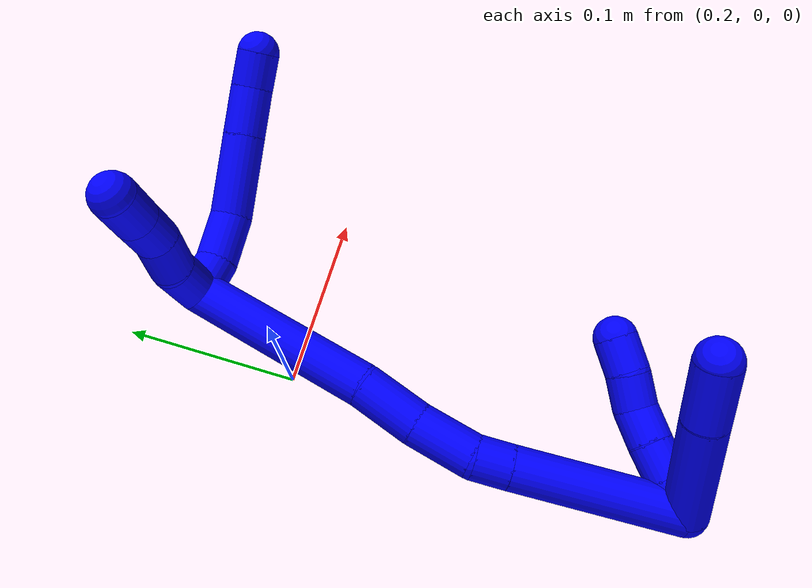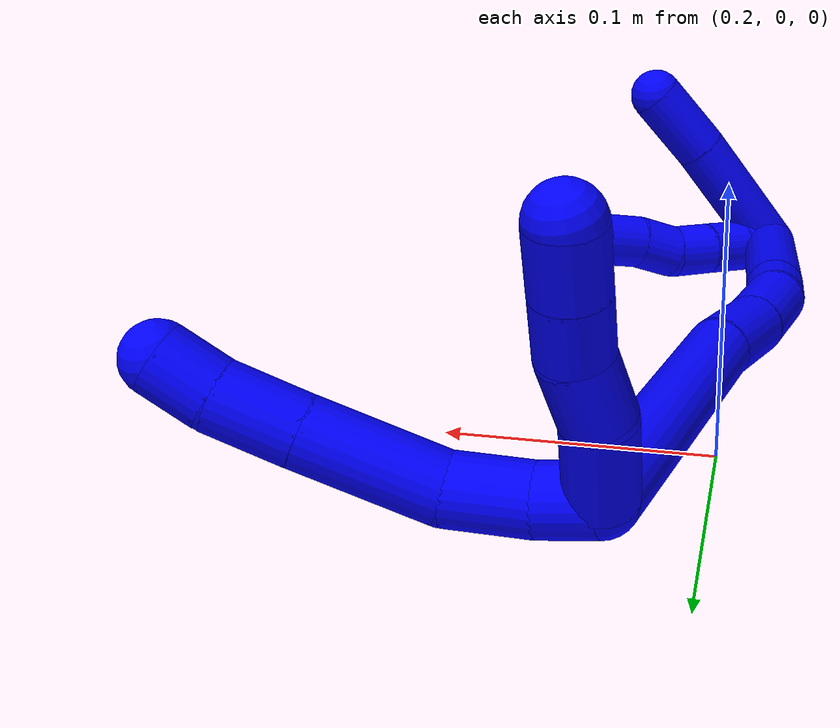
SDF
<sdf version="1.7">
 <world name="default">
  <model name="1">
   <static>0</static>
   <link name="1">
    <collision name="collision-cylinder-e_1_2_8">
     <pose>-0.010496 -0.000356 0.000443 0.677442 -1.51674 -0.644255</pose>
     <geometry><cylinder><radius>0.0125</radius><length>0.021023</length></cylinder></geometry>
     <surface>
      <friction><ode><mu>1.16</mu><mu2>1.16</mu2><slip1>0</slip1><slip2>0</slip2></ode></friction>
      <contact><ode><kp>1e+06</kp><kd>1</kd><max_vel>0</max_vel><min_depth>0.001</min_depth></ode></contact>
     </surface>
    </collision>
    <visual name="visual-cylinder-e_1_2_8">
     <pose>-0.010496 -0.000356 0.000443 0.677442 -1.51674 -0.644255</pose>
     <geometry><cylinder><radius>0.0125</radius><length>0.021023</length></cylinder></geometry>
     <material><ambient>0 0 1 1</ambient></material>
    </visual>
    <collision name="collision-cylinder-e_2_8_9">
     <pose>-0.035555 -0.000257 -0.002186 -2.99445 -1.36076 2.95994</pose>
     <geometry><cylinder><radius>0.0125</radius><length>0.02978</length></cylinder></geometry>
     <surface>
      <friction><ode><mu>1.16</mu><mu2>1.16</mu2><slip1>0</slip1><slip2>0</slip2></ode></friction>
      <contact><ode><kp>1e+06</kp><kd>1</kd><max_vel>0</max_vel><min_depth>0.001</min_depth></ode></contact>
     </surface>
    </collision>
    <visual name="visual-cylinder-e_2_8_9">
     <pose>-0.035555 -0.000257 -0.002186 -2.99445 -1.36076 2.95994</pose>
     <geometry><cylinder><radius>0.0125</radius><length>0.02978</length></cylinder></geometry>
     <material><ambient>0 0 1 1</ambient></material>
    </visual>
    <collision name="collision-cylinder-e_3_9_10">
     <pose>-0.071076 -0.000217 -0.017698 3.10824 -1.03484 -3.08299</pose>
     <geometry><cylinder><radius>0.0125</radius><length>0.048752</length></cylinder></geometry>
     <surface>
      <friction><ode><mu>1.16</mu><mu2>1.16</mu2><slip1>0</slip1><slip2>0</slip2></ode></friction>
      <contact><ode><kp>1e+06</kp><kd>1</kd><max_vel>0</max_vel><min_depth>0.001</min_depth></ode></contact>
     </surface>
    </collision>
    <visual name="visual-cylinder-e_3_9_10">
     <pose>-0.071076 -0.000217 -0.017698 3.10824 -1.03484 -3.08299</pose>
     <geometry><cylinder><radius>0.0125</radius><length>0.048752</length></cylinder></geometry>
     <material><ambient>0 0 1 1</ambient></material>
    </visual>
    <collision name="collision-cylinder-e_4_10_11">
     <pose>-0.104464 -0.001133 -0.037786 3.0762 -1.01832 -3.02455</pose>
     <geometry><cylinder><radius>0.0125</radius><length>0.029205</length></cylinder></geometry>
     <surface>
      <friction><ode><mu>1.16</mu><mu2>1.16</mu2><slip1>0</slip1><slip2>0</slip2></ode></friction>
      <contact><ode><kp>1e+06</kp><kd>1</kd><max_vel>0</max_vel><min_depth>0.001</min_depth></ode></contact>
     </surface>
    </collision>
    <visual name="visual-cylinder-e_4_10_11">
     <pose>-0.104464 -0.001133 -0.037786 3.0762 -1.01832 -3.02455</pose>
     <geometry><cylinder><radius>0.0125</radius><length>0.029205</length></cylinder></geometry>
     <material><ambient>0 0 1 1</ambient></material>
    </visual>
    <collision name="collision-cylinder-e_5_11_6">
     <pose>-0.125039 -0.003188 -0.052068 2.9114 -0.874117 -2.65644</pose>
     <geometry><cylinder><radius>0.0125</radius><length>0.02124</length></cylinder></geometry>
     <surface>
      <friction><ode><mu>1.16</mu><mu2>1.16</mu2><slip1>0</slip1><slip2>0</slip2></ode></friction>
      <contact><ode><kp>1e+06</kp><kd>1</kd><max_vel>0</max_vel><min_depth>0.001</min_depth></ode></contact>
     </surface>
    </collision>
    <visual name="visual-cylinder-e_5_11_6">
     <pose>-0.125039 -0.003188 -0.052068 2.9114 -0.874117 -2.65644</pose>
     <geometry><cylinder><radius>0.0125</radius><length>0.02124</length></cylinder></geometry>
     <material><ambient>0 0 1 1</ambient></material>
    </visual>
    <collision name="collision-cylinder-e_1_2_12">
     <pose>0.002243 -0.001075 -0.015877 3.07397 0.140013 2.24266</pose>
     <geometry><cylinder><radius>0.0125</radius><length>0.032142</length></cylinder></geometry>
     <surface>
      <friction><ode><mu>1.16</mu><mu2>1.16</mu2><slip1>0</slip1><slip2>0</slip2></ode></friction>
      <contact><ode><kp>1e+06</kp><kd>1</kd><max_vel>0</max_vel><min_depth>0.001</min_depth></ode></contact>
     </surface>
    </collision>
    <visual name="visual-cylinder-e_1_2_12">
     <pose>0.002243 -0.001075 -0.015877 3.07397 0.140013 2.24266</pose>
     <geometry><cylinder><radius>0.0125</radius><length>0.032142</length></cylinder></geometry>
     <material><ambient>0 0 1 1</ambient></material>
    </visual>
    <collision name="collision-cylinder-e_2_12_13">
     <pose>0.002919 -0.002958 -0.043507 3.07305 -0.132235 -2.18598</pose>
     <geometry><cylinder><radius>0.0125</radius><length>0.023768</length></cylinder></geometry>
     <surface>
      <friction><ode><mu>1.16</mu><mu2>1.16</mu2><slip1>0</slip1><slip2>0</slip2></ode></friction>
      <contact><ode><kp>1e+06</kp><kd>1</kd><max_vel>0</max_vel><min_depth>0.001</min_depth></ode></contact>
     </surface>
    </collision>
    <visual name="visual-cylinder-e_2_12_13">
     <pose>0.002919 -0.002958 -0.043507 3.07305 -0.132235 -2.18598</pose>
     <geometry><cylinder><radius>0.0125</radius><length>0.023768</length></cylinder></geometry>
     <material><ambient>0 0 1 1</ambient></material>
    </visual>
    <collision name="collision-cylinder-e_3_13_14">
     <pose>0.002597 -0.004548 -0.065833 3.06765 0.116899 2.01422</pose>
     <geometry><cylinder><radius>0.0125</radius><length>0.02135</length></cylinder></geometry>
     <surface>
      <friction><ode><mu>1.16</mu><mu2>1.16</mu2><slip1>0</slip1><slip2>0</slip2></ode></friction>
      <contact><ode><kp>1e+06</kp><kd>1</kd><max_vel>0</max_vel><min_depth>0.001</min_depth></ode></contact>
     </surface>
    </collision>
    <visual name="visual-cylinder-e_3_13_14">
     <pose>0.002597 -0.004548 -0.065833 3.06765 0.116899 2.01422</pose>
     <geometry><cylinder><radius>0.0125</radius><length>0.02135</length></cylinder></geometry>
     <material><ambient>0 0 1 1</ambient></material>
    </visual>
    <collision name="collision-cylinder-e_4_14_5">
     <pose>0.005105 -0.006343 -0.08766 3.05188 0.111341 1.78549</pose>
     <geometry><cylinder><radius>0.0125</radius><length>0.02274</length></cylinder></geometry>
     <surface>
      <friction><ode><mu>1.16</mu><mu2>1.16</mu2><slip1>0</slip1><slip2>0</slip2></ode></friction>
      <contact><ode><kp>1e+06</kp><kd>1</kd><max_vel>0</max_vel><min_depth>0.001</min_depth></ode></contact>
     </surface>
    </collision>
    <visual name="visual-cylinder-e_4_14_5">
     <pose>0.005105 -0.006343 -0.08766 3.05188 0.111341 1.78549</pose>
     <geometry><cylinder><radius>0.0125</radius><length>0.02274</length></cylinder></geometry>
     <material><ambient>0 0 1 1</ambient></material>
    </visual>
    <collision name="collision-cylinder-e_1_2_15">
     <pose>0.011967 -0.053284 0.015263 1.29181 0.212641 0.160542</pose>
     <geometry><cylinder><radius>0.0125</radius><length>0.113408</length></cylinder></geometry>
     <surface>
      <friction><ode><mu>1.16</mu><mu2>1.16</mu2><slip1>0</slip1><slip2>0</slip2></ode></friction>
      <contact><ode><kp>1e+06</kp><kd>1</kd><max_vel>0</max_vel><min_depth>0.001</min_depth></ode></contact>
     </surface>
    </collision>
    <visual name="visual-cylinder-e_1_2_15">
     <pose>0.011967 -0.053284 0.015263 1.29181 0.212641 0.160542</pose>
     <geometry><cylinder><radius>0.0125</radius><length>0.113408</length></cylinder></geometry>
     <material><ambient>0 0 1 1</ambient></material>
    </visual>
    <collision name="collision-cylinder-e_2_15_16">
     <pose>0.028751 -0.122197 0.037553 1.14829 0.274062 0.177918</pose>
     <geometry><cylinder><radius>0.0125</radius><length>0.035599</length></cylinder></geometry>
     <surface>
      <friction><ode><mu>1.16</mu><mu2>1.16</mu2><slip1>0</slip1><slip2>0</slip2></ode></friction>
      <contact><ode><kp>1e+06</kp><kd>1</kd><max_vel>0</max_vel><min_depth>0.001</min_depth></ode></contact>
     </surface>
    </collision>
    <visual name="visual-cylinder-e_2_15_16">
     <pose>0.028751 -0.122197 0.037553 1.14829 0.274062 0.177918</pose>
     <geometry><cylinder><radius>0.0125</radius><length>0.035599</length></cylinder></geometry>
     <material><ambient>0 0 1 1</ambient></material>
    </visual>
    <collision name="collision-cylinder-e_3_16_17">
     <pose>0.036825 -0.153762 0.050362 1.22274 0.189738 0.133202</pose>
     <geometry><cylinder><radius>0.0125</radius><length>0.034526</length></cylinder></geometry>
     <surface>
      <friction><ode><mu>1.16</mu><mu2>1.16</mu2><slip1>0</slip1><slip2>0</slip2></ode></friction>
      <contact><ode><kp>1e+06</kp><kd>1</kd><max_vel>0</max_vel><min_depth>0.001</min_depth></ode></contact>
     </surface>
    </collision>
    <visual name="visual-cylinder-e_3_16_17">
     <pose>0.036825 -0.153762 0.050362 1.22274 0.189738 0.133202</pose>
     <geometry><cylinder><radius>0.0125</radius><length>0.034526</length></cylinder></geometry>
     <material><ambient>0 0 1 1</ambient></material>
    </visual>
    <collision name="collision-cylinder-e_4_17_18">
     <pose>0.039229 -0.178946 0.060183 1.15898 -0.084169 -0.055102</pose>
     <geometry><cylinder><radius>0.0125</radius><length>0.020253</length></cylinder></geometry>
     <surface>
      <friction><ode><mu>1.16</mu><mu2>1.16</mu2><slip1>0</slip1><slip2>0</slip2></ode></friction>
      <contact><ode><kp>1e+06</kp><kd>1</kd><max_vel>0</max_vel><min_depth>0.001</min_depth></ode></contact>
     </surface>
    </collision>
    <visual name="visual-cylinder-e_4_17_18">
     <pose>0.039229 -0.178946 0.060183 1.15898 -0.084169 -0.055102</pose>
     <geometry><cylinder><radius>0.0125</radius><length>0.020253</length></cylinder></geometry>
     <material><ambient>0 0 1 1</ambient></material>
    </visual>
    <collision name="collision-cylinder-e_5_18_1">
     <pose>0.033236 -0.232022 0.083373 1.15885 -0.107081 -0.070106</pose>
     <geometry><cylinder><radius>0.0125</radius><length>0.096213</length></cylinder></geometry>
     <surface>
      <friction><ode><mu>1.16</mu><mu2>1.16</mu2><slip1>0</slip1><slip2>0</slip2></ode></friction>
      <contact><ode><kp>1e+06</kp><kd>1</kd><max_vel>0</max_vel><min_depth>0.001</min_depth></ode></contact>
     </surface>
    </collision>
    <visual name="visual-cylinder-e_5_18_1">
     <pose>0.033236 -0.232022 0.083373 1.15885 -0.107081 -0.070106</pose>
     <geometry><cylinder><radius>0.0125</radius><length>0.096213</length></cylinder></geometry>
     <material><ambient>0 0 1 1</ambient></material>
    </visual>
    <collision name="collision-cylinder-e_1_1_19">
     <pose>0.013473 -0.278289 0.073809 3.05693 -0.46954 -2.79106</pose>
     <geometry><cylinder><radius>0.0125</radius><length>0.064631</length></cylinder></geometry>
     <surface>
      <friction><ode><mu>1.16</mu><mu2>1.16</mu2><slip1>0</slip1><slip2>0</slip2></ode></friction>
      <contact><ode><kp>1e+06</kp><kd>1</kd><max_vel>0</max_vel><min_depth>0.001</min_depth></ode></contact>
     </surface>
    </collision>
    <visual name="visual-cylinder-e_1_1_19">
     <pose>0.013473 -0.278289 0.073809 3.05693 -0.46954 -2.79106</pose>
     <geometry><cylinder><radius>0.0125</radius><length>0.064631</length></cylinder></geometry>
     <material><ambient>0 0 1 1</ambient></material>
    </visual>
    <collision name="collision-cylinder-e_2_19_4">
     <pose>-0.010208 -0.282184 0.029977 3.04542 -0.537818 -2.79585</pose>
     <geometry><cylinder><radius>0.0125</radius><length>0.035369</length></cylinder></geometry>
     <surface>
      <friction><ode><mu>1.16</mu><mu2>1.16</mu2><slip1>0</slip1><slip2>0</slip2></ode></friction>
      <contact><ode><kp>1e+06</kp><kd>1</kd><max_vel>0</max_vel><min_depth>0.001</min_depth></ode></contact>
     </surface>
    </collision>
    <visual name="visual-cylinder-e_2_19_4">
     <pose>-0.010208 -0.282184 0.029977 3.04542 -0.537818 -2.79585</pose>
     <geometry><cylinder><radius>0.0125</radius><length>0.035369</length></cylinder></geometry>
     <material><ambient>0 0 1 1</ambient></material>
    </visual>
    <collision name="collision-cylinder-e_1_1_20">
     <pose>0.020882 -0.270056 0.098734 -2.15001 -0.805722 1.33471</pose>
     <geometry><cylinder><radius>0.0125</radius><length>0.02</length></cylinder></geometry>
     <surface>
      <friction><ode><mu>1.16</mu><mu2>1.16</mu2><slip1>0</slip1><slip2>0</slip2></ode></friction>
      <contact><ode><kp>1e+06</kp><kd>1</kd><max_vel>0</max_vel><min_depth>0.001</min_depth></ode></contact>
     </surface>
    </collision>
    <visual name="visual-cylinder-e_1_1_20">
     <pose>0.020882 -0.270056 0.098734 -2.15001 -0.805722 1.33471</pose>
     <geometry><cylinder><radius>0.0125</radius><length>0.02</length></cylinder></geometry>
     <material><ambient>0 0 1 1</ambient></material>
    </visual>
    <collision name="collision-cylinder-e_2_20_21">
     <pose>0.006445 -0.258484 0.091139 -2.15312 -0.807175 1.34029</pose>
     <geometry><cylinder><radius>0.0125</radius><length>0.02</length></cylinder></geometry>
     <surface>
      <friction><ode><mu>1.16</mu><mu2>1.16</mu2><slip1>0</slip1><slip2>0</slip2></ode></friction>
      <contact><ode><kp>1e+06</kp><kd>1</kd><max_vel>0</max_vel><min_depth>0.001</min_depth></ode></contact>
     </surface>
    </collision>
    <visual name="visual-cylinder-e_2_20_21">
     <pose>0.006445 -0.258484 0.091139 -2.15312 -0.807175 1.34029</pose>
     <geometry><cylinder><radius>0.0125</radius><length>0.02</length></cylinder></geometry>
     <material><ambient>0 0 1 1</ambient></material>
    </visual>
    <collision name="collision-cylinder-e_3_21_22">
     <pose>-0.008497 -0.24733 0.083945 -2.13339 -0.881738 1.41518</pose>
     <geometry><cylinder><radius>0.0125</radius><length>0.02</length></cylinder></geometry>
     <surface>
      <friction><ode><mu>1.16</mu><mu2>1.16</mu2><slip1>0</slip1><slip2>0</slip2></ode></friction>
      <contact><ode><kp>1e+06</kp><kd>1</kd><max_vel>0</max_vel><min_depth>0.001</min_depth></ode></contact>
     </surface>
    </collision>
    <visual name="visual-cylinder-e_3_21_22">
     <pose>-0.008497 -0.24733 0.083945 -2.13339 -0.881738 1.41518</pose>
     <geometry><cylinder><radius>0.0125</radius><length>0.02</length></cylinder></geometry>
     <material><ambient>0 0 1 1</ambient></material>
    </visual>
    <collision name="collision-cylinder-e_4_22_23">
     <pose>-0.023627 -0.238711 0.074674 -2.6378 -0.834788 2.08989</pose>
     <geometry><cylinder><radius>0.0125</radius><length>0.02</length></cylinder></geometry>
     <surface>
      <friction><ode><mu>1.16</mu><mu2>1.16</mu2><slip1>0</slip1><slip2>0</slip2></ode></friction>
      <contact><ode><kp>1e+06</kp><kd>1</kd><max_vel>0</max_vel><min_depth>0.001</min_depth></ode></contact>
     </surface>
    </collision>
    <visual name="visual-cylinder-e_4_22_23">
     <pose>-0.023627 -0.238711 0.074674 -2.6378 -0.834788 2.08989</pose>
     <geometry><cylinder><radius>0.0125</radius><length>0.02</length></cylinder></geometry>
     <material><ambient>0 0 1 1</ambient></material>
    </visual>
    <collision name="collision-cylinder-e_5_23_3">
     <pose>-0.038599 -0.23083 0.064179 -2.35358 -0.857272 1.66521</pose>
     <geometry><cylinder><radius>0.0125</radius><length>0.02</length></cylinder></geometry>
     <surface>
      <friction><ode><mu>1.16</mu><mu2>1.16</mu2><slip1>0</slip1><slip2>0</slip2></ode></friction>
      <contact><ode><kp>1e+06</kp><kd>1</kd><max_vel>0</max_vel><min_depth>0.001</min_depth></ode></contact>
     </surface>
    </collision>
    <visual name="visual-cylinder-e_5_23_3">
     <pose>-0.038599 -0.23083 0.064179 -2.35358 -0.857272 1.66521</pose>
     <geometry><cylinder><radius>0.0125</radius><length>0.02</length></cylinder></geometry>
     <material><ambient>0 0 1 1</ambient></material>
    </visual>
    <collision name="collision-sphere-3">
     <pose>-0.04616 -0.22619 0.059563 0 -0 0</pose>
     <geometry><sphere><radius>0.0125</radius></sphere></geometry>
     <surface>
      <friction><ode><mu>1.16</mu><mu2>1.16</mu2><slip1>0</slip1><slip2>0</slip2></ode></friction>
      <contact><ode><kp>1e+06</kp><kd>1</kd><max_vel>0</max_vel><min_depth>0.001</min_depth></ode></contact>
     </surface>
    </collision>
    <visual name="visual-sphere-3">
     <pose>-0.04616 -0.22619 0.059563 0 -0 0</pose>
     <geometry><sphere><radius>0.0125</radius></sphere></geometry>
     <material><ambient>0 0 1 1</ambient></material>
    </visual>
    <collision name="collision-sphere-23">
     <pose>-0.031038 -0.23547 0.068795 0 -0 0</pose>
     <geometry><sphere><radius>0.0125</radius></sphere></geometry>
     <surface>
      <friction><ode><mu>1.16</mu><mu2>1.16</mu2><slip1>0</slip1><slip2>0</slip2></ode></friction>
      <contact><ode><kp>1e+06</kp><kd>1</kd><max_vel>0</max_vel><min_depth>0.001</min_depth></ode></contact>
     </surface>
    </collision>
    <visual name="visual-sphere-23">
     <pose>-0.031038 -0.23547 0.068795 0 -0 0</pose>
     <geometry><sphere><radius>0.0125</radius></sphere></geometry>
     <material><ambient>0 0 1 1</ambient></material>
    </visual>
    <collision name="collision-sphere-22">
     <pose>-0.016215 -0.241952 0.080553 0 -0 0</pose>
     <geometry><sphere><radius>0.0125</radius></sphere></geometry>
     <surface>
      <friction><ode><mu>1.16</mu><mu2>1.16</mu2><slip1>0</slip1><slip2>0</slip2></ode></friction>
      <contact><ode><kp>1e+06</kp><kd>1</kd><max_vel>0</max_vel><min_depth>0.001</min_depth></ode></contact>
     </surface>
    </collision>
    <visual name="visual-sphere-22">
     <pose>-0.016215 -0.241952 0.080553 0 -0 0</pose>
     <geometry><sphere><radius>0.0125</radius></sphere></geometry>
     <material><ambient>0 0 1 1</ambient></material>
    </visual>
    <collision name="collision-sphere-21">
     <pose>-0.000778 -0.252708 0.087336 0 -0 0</pose>
     <geometry><sphere><radius>0.0125</radius></sphere></geometry>
     <surface>
      <friction><ode><mu>1.16</mu><mu2>1.16</mu2><slip1>0</slip1><slip2>0</slip2></ode></friction>
      <contact><ode><kp>1e+06</kp><kd>1</kd><max_vel>0</max_vel><min_depth>0.001</min_depth></ode></contact>
     </surface>
    </collision>
    <visual name="visual-sphere-21">
     <pose>-0.000778 -0.252708 0.087336 0 -0 0</pose>
     <geometry><sphere><radius>0.0125</radius></sphere></geometry>
     <material><ambient>0 0 1 1</ambient></material>
    </visual>
    <collision name="collision-sphere-20">
     <pose>0.013668 -0.264259 0.094943 0 -0 0</pose>
     <geometry><sphere><radius>0.0125</radius></sphere></geometry>
     <surface>
      <friction><ode><mu>1.16</mu><mu2>1.16</mu2><slip1>0</slip1><slip2>0</slip2></ode></friction>
      <contact><ode><kp>1e+06</kp><kd>1</kd><max_vel>0</max_vel><min_depth>0.001</min_depth></ode></contact>
     </surface>
    </collision>
    <visual name="visual-sphere-20">
     <pose>0.013668 -0.264259 0.094943 0 -0 0</pose>
     <geometry><sphere><radius>0.0125</radius></sphere></geometry>
     <material><ambient>0 0 1 1</ambient></material>
    </visual>
    <collision name="collision-sphere-4">
     <pose>-0.019267 -0.283642 0.014859 0 -0 0</pose>
     <geometry><sphere><radius>0.0125</radius></sphere></geometry>
     <surface>
      <friction><ode><mu>1.16</mu><mu2>1.16</mu2><slip1>0</slip1><slip2>0</slip2></ode></friction>
      <contact><ode><kp>1e+06</kp><kd>1</kd><max_vel>0</max_vel><min_depth>0.001</min_depth></ode></contact>
     </surface>
    </collision>
    <visual name="visual-sphere-4">
     <pose>-0.019267 -0.283642 0.014859 0 -0 0</pose>
     <geometry><sphere><radius>0.0125</radius></sphere></geometry>
     <material><ambient>0 0 1 1</ambient></material>
    </visual>
    <collision name="collision-sphere-6">
     <pose>-0.133185 -0.004743 -0.058702 0 -0 0</pose>
     <geometry><sphere><radius>0.0125</radius></sphere></geometry>
     <surface>
      <friction><ode><mu>1.16</mu><mu2>1.16</mu2><slip1>0</slip1><slip2>0</slip2></ode></friction>
      <contact><ode><kp>1e+06</kp><kd>1</kd><max_vel>0</max_vel><min_depth>0.001</min_depth></ode></contact>
     </surface>
    </collision>
    <visual name="visual-sphere-6">
     <pose>-0.133185 -0.004743 -0.058702 0 -0 0</pose>
     <geometry><sphere><radius>0.0125</radius></sphere></geometry>
     <material><ambient>0 0 1 1</ambient></material>
    </visual>
    <collision name="collision-sphere-11">
     <pose>-0.116894 -0.001633 -0.045433 0 -0 0</pose>
     <geometry><sphere><radius>0.0125</radius></sphere></geometry>
     <surface>
      <friction><ode><mu>1.16</mu><mu2>1.16</mu2><slip1>0</slip1><slip2>0</slip2></ode></friction>
      <contact><ode><kp>1e+06</kp><kd>1</kd><max_vel>0</max_vel><min_depth>0.001</min_depth></ode></contact>
     </surface>
    </collision>
    <visual name="visual-sphere-11">
     <pose>-0.116894 -0.001633 -0.045433 0 -0 0</pose>
     <geometry><sphere><radius>0.0125</radius></sphere></geometry>
     <material><ambient>0 0 1 1</ambient></material>
    </visual>
    <collision name="collision-sphere-10">
     <pose>-0.092034 -0.000632 -0.030139 0 -0 0</pose>
     <geometry><sphere><radius>0.0125</radius></sphere></geometry>
     <surface>
      <friction><ode><mu>1.16</mu><mu2>1.16</mu2><slip1>0</slip1><slip2>0</slip2></ode></friction>
      <contact><ode><kp>1e+06</kp><kd>1</kd><max_vel>0</max_vel><min_depth>0.001</min_depth></ode></contact>
     </surface>
    </collision>
    <visual name="visual-sphere-10">
     <pose>-0.092034 -0.000632 -0.030139 0 -0 0</pose>
     <geometry><sphere><radius>0.0125</radius></sphere></geometry>
     <material><ambient>0 0 1 1</ambient></material>
    </visual>
    <collision name="collision-sphere-9">
     <pose>-0.050118 0.000198 -0.005257 0 -0 0</pose>
     <geometry><sphere><radius>0.0125</radius></sphere></geometry>
     <surface>
      <friction><ode><mu>1.16</mu><mu2>1.16</mu2><slip1>0</slip1><slip2>0</slip2></ode></friction>
      <contact><ode><kp>1e+06</kp><kd>1</kd><max_vel>0</max_vel><min_depth>0.001</min_depth></ode></contact>
     </surface>
    </collision>
    <visual name="visual-sphere-9">
     <pose>-0.050118 0.000198 -0.005257 0 -0 0</pose>
     <geometry><sphere><radius>0.0125</radius></sphere></geometry>
     <material><ambient>0 0 1 1</ambient></material>
    </visual>
    <collision name="collision-sphere-2">
     <geometry><sphere><radius>0.0125</radius></sphere></geometry>
     <surface>
      <friction><ode><mu>1.16</mu><mu2>1.16</mu2><slip1>0</slip1><slip2>0</slip2></ode></friction>
      <contact><ode><kp>1e+06</kp><kd>1</kd><max_vel>0</max_vel><min_depth>0.001</min_depth></ode></contact>
     </surface>
    </collision>
    <visual name="visual-sphere-2">
     <geometry><sphere><radius>0.0125</radius></sphere></geometry>
     <material><ambient>0 0 1 1</ambient></material>
    </visual>
    <collision name="collision-sphere-19">
     <pose>-0.001149 -0.280726 0.045094 0 -0 0</pose>
     <geometry><sphere><radius>0.0125</radius></sphere></geometry>
     <surface>
      <friction><ode><mu>1.16</mu><mu2>1.16</mu2><slip1>0</slip1><slip2>0</slip2></ode></friction>
      <contact><ode><kp>1e+06</kp><kd>1</kd><max_vel>0</max_vel><min_depth>0.001</min_depth></ode></contact>
     </surface>
    </collision>
    <visual name="visual-sphere-19">
     <pose>-0.001149 -0.280726 0.045094 0 -0 0</pose>
     <geometry><sphere><radius>0.0125</radius></sphere></geometry>
     <material><ambient>0 0 1 1</ambient></material>
    </visual>
    <collision name="collision-sphere-8">
     <pose>-0.020993 -0.000712 0.000885 0 -0 0</pose>
     <geometry><sphere><radius>0.0125</radius></sphere></geometry>
     <surface>
      <friction><ode><mu>1.16</mu><mu2>1.16</mu2><slip1>0</slip1><slip2>0</slip2></ode></friction>
      <contact><ode><kp>1e+06</kp><kd>1</kd><max_vel>0</max_vel><min_depth>0.001</min_depth></ode></contact>
     </surface>
    </collision>
    <visual name="visual-sphere-8">
     <pose>-0.020993 -0.000712 0.000885 0 -0 0</pose>
     <geometry><sphere><radius>0.0125</radius></sphere></geometry>
     <material><ambient>0 0 1 1</ambient></material>
    </visual>
    <collision name="collision-sphere-12">
     <pose>0.004486 -0.002151 -0.031754 0 -0 0</pose>
     <geometry><sphere><radius>0.0125</radius></sphere></geometry>
     <surface>
      <friction><ode><mu>1.16</mu><mu2>1.16</mu2><slip1>0</slip1><slip2>0</slip2></ode></friction>
      <contact><ode><kp>1e+06</kp><kd>1</kd><max_vel>0</max_vel><min_depth>0.001</min_depth></ode></contact>
     </surface>
    </collision>
    <visual name="visual-sphere-12">
     <pose>0.004486 -0.002151 -0.031754 0 -0 0</pose>
     <geometry><sphere><radius>0.0125</radius></sphere></geometry>
     <material><ambient>0 0 1 1</ambient></material>
    </visual>
    <collision name="collision-sphere-13">
     <pose>0.001352 -0.003764 -0.05526 0 -0 0</pose>
     <geometry><sphere><radius>0.0125</radius></sphere></geometry>
     <surface>
      <friction><ode><mu>1.16</mu><mu2>1.16</mu2><slip1>0</slip1><slip2>0</slip2></ode></friction>
      <contact><ode><kp>1e+06</kp><kd>1</kd><max_vel>0</max_vel><min_depth>0.001</min_depth></ode></contact>
     </surface>
    </collision>
    <visual name="visual-sphere-13">
     <pose>0.001352 -0.003764 -0.05526 0 -0 0</pose>
     <geometry><sphere><radius>0.0125</radius></sphere></geometry>
     <material><ambient>0 0 1 1</ambient></material>
    </visual>
    <collision name="collision-sphere-14">
     <pose>0.003842 -0.005331 -0.076406 0 -0 0</pose>
     <geometry><sphere><radius>0.0125</radius></sphere></geometry>
     <surface>
      <friction><ode><mu>1.16</mu><mu2>1.16</mu2><slip1>0</slip1><slip2>0</slip2></ode></friction>
      <contact><ode><kp>1e+06</kp><kd>1</kd><max_vel>0</max_vel><min_depth>0.001</min_depth></ode></contact>
     </surface>
    </collision>
    <visual name="visual-sphere-14">
     <pose>0.003842 -0.005331 -0.076406 0 -0 0</pose>
     <geometry><sphere><radius>0.0125</radius></sphere></geometry>
     <material><ambient>0 0 1 1</ambient></material>
    </visual>
    <collision name="collision-sphere-5">
     <pose>0.006368 -0.007356 -0.098915 0 -0 0</pose>
     <geometry><sphere><radius>0.0125</radius></sphere></geometry>
     <surface>
      <friction><ode><mu>1.16</mu><mu2>1.16</mu2><slip1>0</slip1><slip2>0</slip2></ode></friction>
      <contact><ode><kp>1e+06</kp><kd>1</kd><max_vel>0</max_vel><min_depth>0.001</min_depth></ode></contact>
     </surface>
    </collision>
    <visual name="visual-sphere-5">
     <pose>0.006368 -0.007356 -0.098915 0 -0 0</pose>
     <geometry><sphere><radius>0.0125</radius></sphere></geometry>
     <material><ambient>0 0 1 1</ambient></material>
    </visual>
    <collision name="collision-sphere-15">
     <pose>0.023934 -0.106568 0.030527 0 -0 0</pose>
     <geometry><sphere><radius>0.0125</radius></sphere></geometry>
     <surface>
      <friction><ode><mu>1.16</mu><mu2>1.16</mu2><slip1>0</slip1><slip2>0</slip2></ode></friction>
      <contact><ode><kp>1e+06</kp><kd>1</kd><max_vel>0</max_vel><min_depth>0.001</min_depth></ode></contact>
     </surface>
    </collision>
    <visual name="visual-sphere-15">
     <pose>0.023934 -0.106568 0.030527 0 -0 0</pose>
     <geometry><sphere><radius>0.0125</radius></sphere></geometry>
     <material><ambient>0 0 1 1</ambient></material>
    </visual>
    <collision name="collision-sphere-16">
     <pose>0.033569 -0.137825 0.04458 0 -0 0</pose>
     <geometry><sphere><radius>0.0125</radius></sphere></geometry>
     <surface>
      <friction><ode><mu>1.16</mu><mu2>1.16</mu2><slip1>0</slip1><slip2>0</slip2></ode></friction>
      <contact><ode><kp>1e+06</kp><kd>1</kd><max_vel>0</max_vel><min_depth>0.001</min_depth></ode></contact>
     </surface>
    </collision>
    <visual name="visual-sphere-16">
     <pose>0.033569 -0.137825 0.04458 0 -0 0</pose>
     <geometry><sphere><radius>0.0125</radius></sphere></geometry>
     <material><ambient>0 0 1 1</ambient></material>
    </visual>
    <collision name="collision-sphere-17">
     <pose>0.04008 -0.169699 0.056144 0 -0 0</pose>
     <geometry><sphere><radius>0.0125</radius></sphere></geometry>
     <surface>
      <friction><ode><mu>1.16</mu><mu2>1.16</mu2><slip1>0</slip1><slip2>0</slip2></ode></friction>
      <contact><ode><kp>1e+06</kp><kd>1</kd><max_vel>0</max_vel><min_depth>0.001</min_depth></ode></contact>
     </surface>
    </collision>
    <visual name="visual-sphere-17">
     <pose>0.04008 -0.169699 0.056144 0 -0 0</pose>
     <geometry><sphere><radius>0.0125</radius></sphere></geometry>
     <material><ambient>0 0 1 1</ambient></material>
    </visual>
    <collision name="collision-sphere-18">
     <pose>0.038378 -0.188193 0.064222 0 -0 0</pose>
     <geometry><sphere><radius>0.0125</radius></sphere></geometry>
     <surface>
      <friction><ode><mu>1.16</mu><mu2>1.16</mu2><slip1>0</slip1><slip2>0</slip2></ode></friction>
      <contact><ode><kp>1e+06</kp><kd>1</kd><max_vel>0</max_vel><min_depth>0.001</min_depth></ode></contact>
     </surface>
    </collision>
    <visual name="visual-sphere-18">
     <pose>0.038378 -0.188193 0.064222 0 -0 0</pose>
     <geometry><sphere><radius>0.0125</radius></sphere></geometry>
     <material><ambient>0 0 1 1</ambient></material>
    </visual>
    <collision name="collision-sphere-1">
     <pose>0.028095 -0.275852 0.102524 0 -0 0</pose>
     <geometry><sphere><radius>0.0125</radius></sphere></geometry>
     <surface>
      <friction><ode><mu>1.16</mu><mu2>1.16</mu2><slip1>0</slip1><slip2>0</slip2></ode></friction>
      <contact><ode><kp>1e+06</kp><kd>1</kd><max_vel>0</max_vel><min_depth>0.001</min_depth></ode></contact>
     </surface>
    </collision>
    <visual name="visual-sphere-1">
     <pose>0.028095 -0.275852 0.102524 0 -0 0</pose>
     <geometry><sphere><radius>0.0125</radius></sphere></geometry>
     <material><ambient>0 0 1 1</ambient></material>
    </visual>
    <inertial>
     <pose>-0.003803 -0.126663 0.026746 0 -0 0</pose>
     <mass>0.75</mass>
     <inertia>
      <ixx>0.000169</ixx>
      <ixy>0</ixy>
      <ixz>0</ixz>
      <iyy>0.000129</iyy>
      <iyz>0</iyz>
      <izz>0.000202</izz>
     </inertia>
    </inertial>
   </link>
   <pose>0.231174 0.066594 0.014815 -2.80644 -0.130219 3.09379</pose>
  </model>
 </world>
</sdf>
